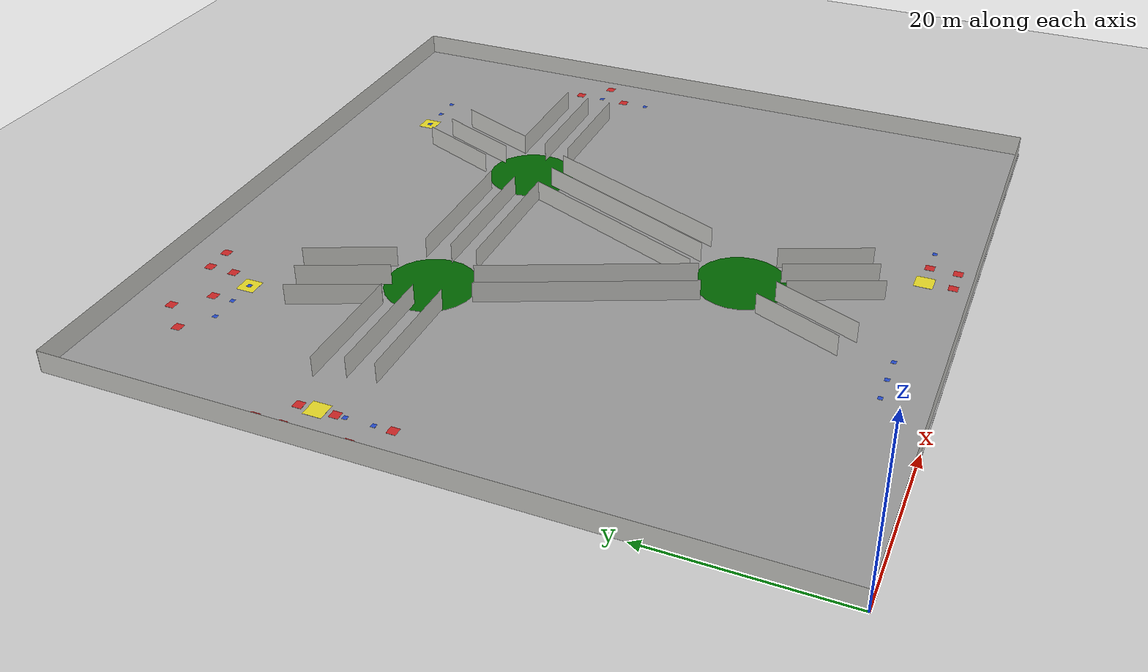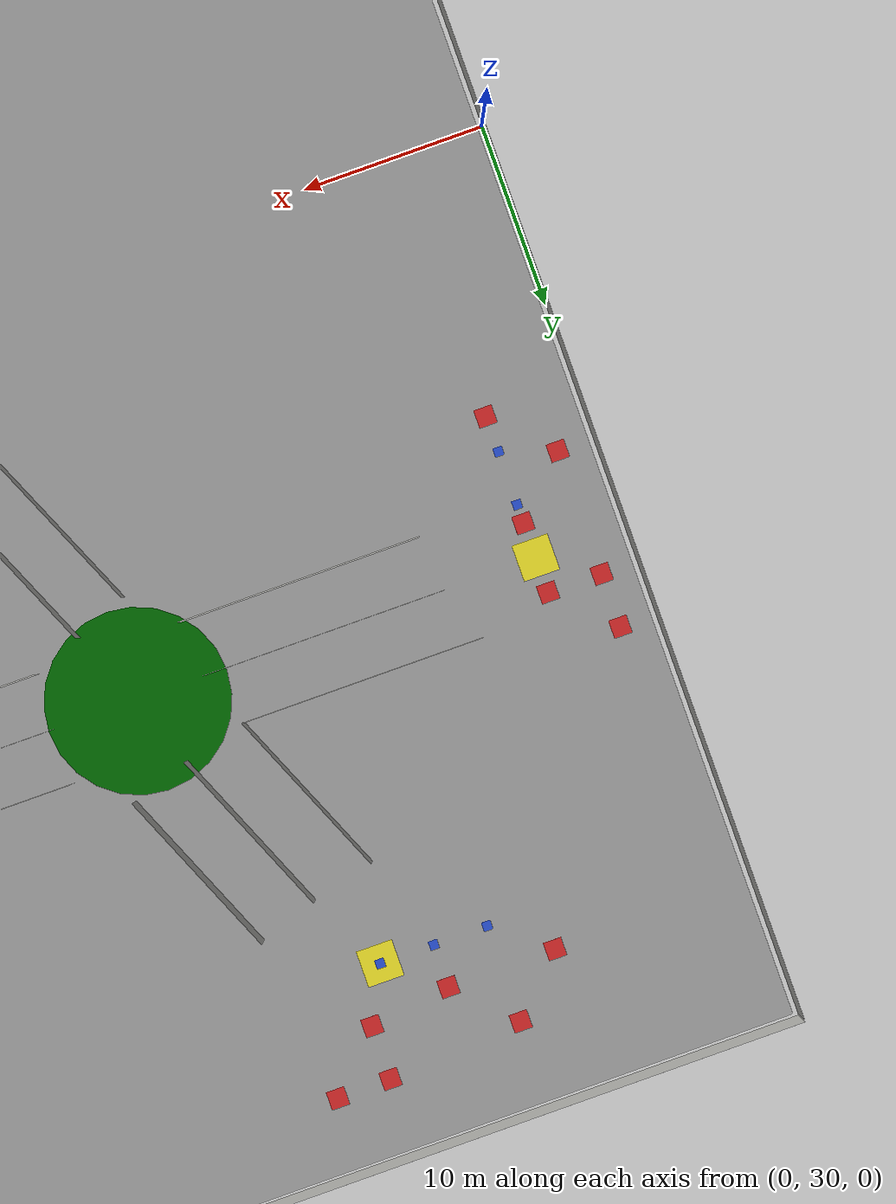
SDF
<sdf version="1.6">
 <world name="default">
  <light name="sun" type="directional">
   <pose>0 0 10 0 -0 0</pose>
   <diffuse>0.8 0.8 0.8 1</diffuse>
   <specular>0.1 0.1 0.1 1</specular>
   <attenuation>
    <range>1000</range>
    <constant>0.9</constant>
    <linear>0.01</linear>
    <quadratic>0.001</quadratic>
   </attenuation>
   <direction>-0.5 0.5 -1</direction>
  </light>
  <model name="ground_plane">
   <static>1</static>
   <link name="link">
    <collision name="collision">
     <geometry><plane><normal>0 0 1</normal><size>100 100</size></plane></geometry>
     <surface><friction><ode><mu>100</mu><mu2>50</mu2></ode></friction></surface>
    </collision>
    <visual name="visual">
     <cast_shadows>0</cast_shadows>
     <geometry><plane><normal>0 0 1</normal><size>100 100</size></plane></geometry>
     <material>
      <script><uri>file://media/materials/scripts/gazebo.material</uri><name>Gazebo/Grey</name></script>
     </material>
    </visual>
   </link>
  </model>
  <gravity>0 0 -9.8</gravity>
  <magnetic_field>6e-06 2.3e-05 -4.2e-05</magnetic_field>
  <atmosphere type="adiabatic"/>
  <physics name="default_physics" default="0" type="ode">
   <max_step_size>0.001</max_step_size>
   <real_time_factor>1</real_time_factor>
   <real_time_update_rate>1000</real_time_update_rate>
  </physics>
  <scene><ambient>0.4 0.4 0.4 1</ambient><background>0.7 0.7 0.7 1</background><shadows>1</shadows></scene>
  <spherical_coordinates>
   <surface_model>EARTH_WGS84</surface_model>
   <latitude_deg>0</latitude_deg>
   <longitude_deg>0</longitude_deg>
   <elevation>0</elevation>
   <heading_deg>0</heading_deg>
  </spherical_coordinates>
  <model name="EMS_WALL">
   <pose>0 40 0 0 -0 0</pose>
   <link name="Wall_28">
    <collision name="Wall_28_Collision">
     <geometry><box><size>80 0.001 2.5</size></box></geometry>
     <pose>0 0 1.25 0 -0 0</pose>
    </collision>
    <visual name="Wall_28_Visual">
     <pose>0 0 1.25 0 -0 0</pose>
     <geometry><box><size>80 0.001 2.5</size></box></geometry>
     <material>
      <script><uri>file://media/materials/scripts/gazebo.material</uri><name>Gazebo/CeilingTiled</name></script>
      <ambient>1 0.764706 0.305882 1</ambient>
     </material>
    </visual>
    <pose>0 2e-06 0 0 -0 1.5708</pose>
   </link>
   <static>1</static>
  </model>
  <model name="EMS_WALL_clone">
   <pose>80 40 0 0 -0 0</pose>
   <link name="Wall_28">
    <collision name="Wall_28_Collision">
     <geometry><box><size>80 0.001 2.5</size></box></geometry>
     <pose>0 0 1.25 0 -0 0</pose>
    </collision>
    <visual name="Wall_28_Visual">
     <pose>0 0 1.25 0 -0 0</pose>
     <geometry><box><size>80 0.001 2.5</size></box></geometry>
     <material>
      <script><uri>file://media/materials/scripts/gazebo.material</uri><name>Gazebo/CeilingTiled</name></script>
      <ambient>1 0.764706 0.305882 1</ambient>
     </material>
    </visual>
    <pose>0 2e-06 0 0 -0 1.5708</pose>
   </link>
   <static>1</static>
  </model>
  <model name="EMS_WALL_clone_clone">
   <pose>40 0 0 0 -0 1.57</pose>
   <link name="Wall_28">
    <collision name="Wall_28_Collision">
     <geometry><box><size>80 0.001 2.5</size></box></geometry>
     <pose>0 0 1.25 0 -0 0</pose>
    </collision>
    <visual name="Wall_28_Visual">
     <pose>0 0 1.25 0 -0 0</pose>
     <geometry><box><size>80 0.001 2.5</size></box></geometry>
     <material>
      <script><uri>file://media/materials/scripts/gazebo.material</uri><name>Gazebo/CeilingTiled</name></script>
      <ambient>1 0.764706 0.305882 1</ambient>
     </material>
    </visual>
    <pose>0 2e-06 0 0 -0 1.5708</pose>
   </link>
   <static>1</static>
  </model>
  <model name="EMS_WALL_clone_clone_clone">
   <pose>40 80 0 0 -0 1.57</pose>
   <link name="Wall_28">
    <collision name="Wall_28_Collision">
     <geometry><box><size>80 0.001 2.5</size></box></geometry>
     <pose>0 0 1.25 0 -0 0</pose>
    </collision>
    <visual name="Wall_28_Visual">
     <pose>0 0 1.25 0 -0 0</pose>
     <geometry><box><size>80 0.001 2.5</size></box></geometry>
     <material>
      <script><uri>file://media/materials/scripts/gazebo.material</uri><name>Gazebo/CeilingTiled</name></script>
      <ambient>1 0.764706 0.305882 1</ambient>
     </material>
    </visual>
    <pose>0 2e-06 0 0 -0 1.5708</pose>
   </link>
   <static>1</static>
  </model>
  <model name="EMS_FLOOR_4">
   <pose>40.2686 39.8608 0 0 -0 0</pose>
   <link name="Wall_32">
    <collision name="Wall_32_Collision">
     <geometry><box><size>80.01 80 0.1</size></box></geometry>
     <pose>0 0 0.05 0 -0 0</pose>
    </collision>
    <visual name="Wall_32_Visual">
     <pose>0 0 0.05 0 -0 0</pose>
     <geometry><box><size>80.01 80 0.1</size></box></geometry>
     <material>
      <script><uri>file://media/materials/scripts/gazebo.material</uri><name>Gazebo/Grey</name></script>
      <ambient>1 1 1 1</ambient>
     </material>
    </visual>
    <pose>0 -1e-06 0 0 -0 1.5708</pose>
   </link>
   <static>1</static>
  </model>
  <model name="35">
   <pose>43.6818 14.1693 0 0 -0 0</pose>
   <link name="Wall_2">
    <collision name="Wall_2_Collision">
     <geometry><box><size>10.2688 0.001 2.5</size></box></geometry>
     <pose>0 0 1.25 0 -0 0</pose>
    </collision>
    <visual name="Wall_2_Visual">
     <pose>0 0 1.25 0 -0 0</pose>
     <geometry><box><size>10.2688 0.001 2.5</size></box></geometry>
     <material>
      <script><uri>file://media/materials/scripts/gazebo.material</uri><name>Gazebo/CeilingTiled</name></script>
      <ambient>0.435294 0.796078 0.67451 1</ambient>
     </material>
    </visual>
    <pose>0 0 0 0 -0 1.9706</pose>
   </link>
   <static>1</static>
  </model>
  <model name="35_clone">
   <pose>40.7717 12.9054 0 0 -0 0</pose>
   <link name="Wall_2">
    <collision name="Wall_2_Collision">
     <geometry><box><size>10.2688 0.001 2.5</size></box></geometry>
     <pose>0 0 1.25 0 -0 0</pose>
    </collision>
    <visual name="Wall_2_Visual">
     <pose>0 0 1.25 0 -0 0</pose>
     <geometry><box><size>10.2688 0.001 2.5</size></box></geometry>
     <material>
      <script><uri>file://media/materials/scripts/gazebo.material</uri><name>Gazebo/CeilingTiled</name></script>
      <ambient>0.435294 0.796078 0.67451 1</ambient>
     </material>
    </visual>
    <pose>0 0 0 0 -0 1.9706</pose>
   </link>
   <static>1</static>
  </model>
  <model name="351_0">
   <pose>33.818 37.6954 0 0 -0 0</pose>
   <link name="Wall_4">
    <collision name="Wall_4_Collision">
     <geometry><box><size>23.3941 0.001 2.5</size></box></geometry>
     <pose>0 0 1.25 0 -0 0</pose>
    </collision>
    <visual name="Wall_4_Visual">
     <pose>0 0 1.25 0 -0 0</pose>
     <geometry><box><size>23.3941 0.001 2.5</size></box></geometry>
     <material>
      <script><uri>file://media/materials/scripts/gazebo.material</uri><name>Gazebo/CeilingTiled</name></script>
      <ambient>0.435294 0.796078 0.67451 1</ambient>
     </material>
    </visual>
    <pose>1e-06 0 0 0 -0 1.9806</pose>
   </link>
   <static>1</static>
  </model>
  <model name="351_0_clone">
   <pose>30.8667 36.459 0 0 -0 0</pose>
   <link name="Wall_4">
    <collision name="Wall_4_Collision">
     <geometry><box><size>23.3941 0.001 2.5</size></box></geometry>
     <pose>0 0 1.25 0 -0 0</pose>
    </collision>
    <visual name="Wall_4_Visual">
     <pose>0 0 1.25 0 -0 0</pose>
     <geometry><box><size>23.3941 0.001 2.5</size></box></geometry>
     <material>
      <script><uri>file://media/materials/scripts/gazebo.material</uri><name>Gazebo/CeilingTiled</name></script>
      <ambient>0.435294 0.796078 0.67451 1</ambient>
     </material>
    </visual>
    <pose>1e-06 0 0 0 -0 1.9806</pose>
   </link>
   <static>1</static>
  </model>
  <model name="352">
   <pose>20.5142 60.1221 0 0 -0 0</pose>
   <link name="Wall_8">
    <collision name="Wall_8_Collision">
     <geometry><box><size>10.0198 0.001 2.5</size></box></geometry>
     <pose>0 0 1.25 0 -0 0</pose>
    </collision>
    <visual name="Wall_8_Visual">
     <pose>0 0 1.25 0 -0 0</pose>
     <geometry><box><size>10.0198 0.001 2.5</size></box></geometry>
     <material>
      <script><uri>file://media/materials/scripts/gazebo.material</uri><name>Gazebo/CeilingTiled</name></script>
      <ambient>0.435294 0.796078 0.67451 1</ambient>
     </material>
    </visual>
    <pose>0 -2e-06 0 0 -0 1.9733</pose>
   </link>
   <static>1</static>
  </model>
  <model name="352_clone">
   <pose>24.0357 61.0304 0 0 -0 0</pose>
   <link name="Wall_8">
    <collision name="Wall_8_Collision">
     <geometry><box><size>10.0198 0.001 2.5</size></box></geometry>
     <pose>0 0 1.25 0 -0 0</pose>
    </collision>
    <visual name="Wall_8_Visual">
     <pose>0 0 1.25 0 -0 0</pose>
     <geometry><box><size>10.0198 0.001 2.5</size></box></geometry>
     <material>
      <script><uri>file://media/materials/scripts/gazebo.material</uri><name>Gazebo/CeilingTiled</name></script>
      <ambient>0.435294 0.796078 0.67451 1</ambient>
     </material>
    </visual>
    <pose>0 -2e-06 0 0 -0 1.9733</pose>
   </link>
   <static>1</static>
  </model>
  <model name="352_clone_clone">
   <pose>27.3125 62.144 0 0 -0 0</pose>
   <link name="Wall_8">
    <collision name="Wall_8_Collision">
     <geometry><box><size>10.0198 0.001 2.5</size></box></geometry>
     <pose>0 0 1.25 0 -0 0</pose>
    </collision>
    <visual name="Wall_8_Visual">
     <pose>0 0 1.25 0 -0 0</pose>
     <geometry><box><size>10.0198 0.001 2.5</size></box></geometry>
     <material>
      <script><uri>file://media/materials/scripts/gazebo.material</uri><name>Gazebo/CeilingTiled</name></script>
      <ambient>0.435294 0.796078 0.67451 1</ambient>
     </material>
    </visual>
    <pose>0 -2e-06 0 0 -0 1.9733</pose>
   </link>
   <static>1</static>
  </model>
  <model name="353">
   <pose>16.9056 52.5 0 0 -0 0</pose>
   <link name="Wall_10">
    <collision name="Wall_10_Collision">
     <geometry><box><size>13.45 0.001 2.5</size></box></geometry>
     <pose>0 0 1.25 0 -0 0</pose>
    </collision>
    <visual name="Wall_10_Visual">
     <pose>0 0 1.25 0 -0 0</pose>
     <geometry><box><size>13.45 0.001 2.5</size></box></geometry>
     <material>
      <script><uri>file://media/materials/scripts/gazebo.material</uri><name>Gazebo/CeilingTiled</name></script>
      <ambient>0.435294 0.796078 0.67451 1</ambient>
     </material>
    </visual>
    <pose>0 0 0 0 -0 3.14159</pose>
   </link>
   <static>1</static>
  </model>
  <model name="353_clone">
   <pose>17.2103 49.4178 0 0 -0 0</pose>
   <link name="Wall_10">
    <collision name="Wall_10_Collision">
     <geometry><box><size>13.45 0.001 2.5</size></box></geometry>
     <pose>0 0 1.25 0 -0 0</pose>
    </collision>
    <visual name="Wall_10_Visual">
     <pose>0 0 1.25 0 -0 0</pose>
     <geometry><box><size>13.45 0.001 2.5</size></box></geometry>
     <material>
      <script><uri>file://media/materials/scripts/gazebo.material</uri><name>Gazebo/CeilingTiled</name></script>
      <ambient>0.435294 0.796078 0.67451 1</ambient>
     </material>
    </visual>
    <pose>0 0 0 0 -0 3.14159</pose>
   </link>
   <static>1</static>
  </model>
  <model name="355">
   <pose>33.4162 15.1125 0 0 -0 0</pose>
   <link name="Wall_12">
    <collision name="Wall_12_Collision">
     <geometry><box><size>10.2688 0.001 2.5</size></box></geometry>
     <pose>0 0 1.25 0 -0 0</pose>
    </collision>
    <visual name="Wall_12_Visual">
     <pose>0 0 1.25 0 -0 0</pose>
     <geometry><box><size>10.2688 0.001 2.5</size></box></geometry>
     <material>
      <script><uri>file://media/materials/scripts/gazebo.material</uri><name>Gazebo/CeilingTiled</name></script>
      <ambient>0.435294 0.796078 0.67451 1</ambient>
     </material>
    </visual>
    <pose>0 0 0 0 -0 1.17099</pose>
   </link>
   <static>1</static>
  </model>
  <model name="355_clone">
   <pose>36.2739 13.8279 0 0 -0 0</pose>
   <link name="Wall_12">
    <collision name="Wall_12_Collision">
     <geometry><box><size>10.2688 0.001 2.5</size></box></geometry>
     <pose>0 0 1.25 0 -0 0</pose>
    </collision>
    <visual name="Wall_12_Visual">
     <pose>0 0 1.25 0 -0 0</pose>
     <geometry><box><size>10.2688 0.001 2.5</size></box></geometry>
     <material>
      <script><uri>file://media/materials/scripts/gazebo.material</uri><name>Gazebo/CeilingTiled</name></script>
      <ambient>0.435294 0.796078 0.67451 1</ambient>
     </material>
    </visual>
    <pose>0 0 0 0 -0 1.17099</pose>
   </link>
   <static>1</static>
  </model>
  <model name="356">
   <pose>43.4074 38.791 0 0 -0 0</pose>
   <link name="Wall_14">
    <collision name="Wall_14_Collision">
     <geometry><box><size>23.2878 0.001 2.5</size></box></geometry>
     <pose>0 0 1.25 0 -0 0</pose>
    </collision>
    <visual name="Wall_14_Visual">
     <pose>0 0 1.25 0 -0 0</pose>
     <geometry><box><size>23.2878 0.001 2.5</size></box></geometry>
     <material>
      <script><uri>file://media/materials/scripts/gazebo.material</uri><name>Gazebo/CeilingTiled</name></script>
      <ambient>0.435294 0.796078 0.67451 1</ambient>
     </material>
    </visual>
    <pose>0 0 0 0 -0 1.17162</pose>
   </link>
   <static>1</static>
  </model>
  <model name="356_clone">
   <pose>46.9426 38.7153 0 0 -0 0</pose>
   <link name="Wall_14">
    <collision name="Wall_14_Collision">
     <geometry><box><size>23.2878 0.001 2.5</size></box></geometry>
     <pose>0 0 1.25 0 -0 0</pose>
    </collision>
    <visual name="Wall_14_Visual">
     <pose>0 0 1.25 0 -0 0</pose>
     <geometry><box><size>23.2878 0.001 2.5</size></box></geometry>
     <material>
      <script><uri>file://media/materials/scripts/gazebo.material</uri><name>Gazebo/CeilingTiled</name></script>
      <ambient>0.435294 0.796078 0.67451 1</ambient>
     </material>
    </visual>
    <pose>0 0 0 0 -0 1.17162</pose>
   </link>
   <static>1</static>
  </model>
  <model name="357">
   <pose>53.4358 62.579 0 0 -0 0</pose>
   <link name="Wall_16">
    <collision name="Wall_16_Collision">
     <geometry><box><size>10.0198 0.001 2.5</size></box></geometry>
     <pose>0 0 1.25 0 -0 0</pose>
    </collision>
    <visual name="Wall_16_Visual">
     <pose>0 0 1.25 0 -0 0</pose>
     <geometry><box><size>10.0198 0.001 2.5</size></box></geometry>
     <material>
      <script><uri>file://media/materials/scripts/gazebo.material</uri><name>Gazebo/CeilingTiled</name></script>
      <ambient>0.435294 0.796078 0.67451 1</ambient>
     </material>
    </visual>
    <pose>0 -2e-06 0 0 -0 1.16829</pose>
   </link>
   <static>1</static>
  </model>
  <model name="357_clone">
   <pose>56.275 61.25 0 0 -0 0</pose>
   <link name="Wall_16">
    <collision name="Wall_16_Collision">
     <geometry><box><size>10.0198 0.001 2.5</size></box></geometry>
     <pose>0 0 1.25 0 -0 0</pose>
    </collision>
    <visual name="Wall_16_Visual">
     <pose>0 0 1.25 0 -0 0</pose>
     <geometry><box><size>10.0198 0.001 2.5</size></box></geometry>
     <material>
      <script><uri>file://media/materials/scripts/gazebo.material</uri><name>Gazebo/CeilingTiled</name></script>
      <ambient>0.435294 0.796078 0.67451 1</ambient>
     </material>
    </visual>
    <pose>0 -2e-06 0 0 -0 1.16829</pose>
   </link>
   <static>1</static>
  </model>
  <model name="357_clone_0">
   <pose>59.4264 60.1671 0 0 -0 0</pose>
   <link name="Wall_16">
    <collision name="Wall_16_Collision">
     <geometry><box><size>10.0198 0.001 2.5</size></box></geometry>
     <pose>0 0 1.25 0 -0 0</pose>
    </collision>
    <visual name="Wall_16_Visual">
     <pose>0 0 1.25 0 -0 0</pose>
     <geometry><box><size>10.0198 0.001 2.5</size></box></geometry>
     <material>
      <script><uri>file://media/materials/scripts/gazebo.material</uri><name>Gazebo/CeilingTiled</name></script>
      <ambient>0.435294 0.796078 0.67451 1</ambient>
     </material>
    </visual>
    <pose>0 -2e-06 0 0 -0 1.16829</pose>
   </link>
   <static>1</static>
  </model>
  <model name="358">
   <pose>63.3255 52.5112 0 0 -0 0</pose>
   <link name="Wall_18">
    <collision name="Wall_18_Collision">
     <geometry><box><size>13.45 0.001 2.5</size></box></geometry>
     <pose>0 0 1.25 0 -0 0</pose>
    </collision>
    <visual name="Wall_18_Visual">
     <pose>0 0 1.25 0 -0 0</pose>
     <geometry><box><size>13.45 0.001 2.5</size></box></geometry>
     <material>
      <script><uri>file://media/materials/scripts/gazebo.material</uri><name>Gazebo/CeilingTiled</name></script>
      <ambient>0.435294 0.796078 0.67451 1</ambient>
     </material>
    </visual>
   </link>
   <static>1</static>
  </model>
  <model name="358_clone">
   <pose>64.0856 55.5387 0 0 -0 0</pose>
   <link name="Wall_18">
    <collision name="Wall_18_Collision">
     <geometry><box><size>13.45 0.001 2.5</size></box></geometry>
     <pose>0 0 1.25 0 -0 0</pose>
    </collision>
    <visual name="Wall_18_Visual">
     <pose>0 0 1.25 0 -0 0</pose>
     <geometry><box><size>13.45 0.001 2.5</size></box></geometry>
     <material>
      <script><uri>file://media/materials/scripts/gazebo.material</uri><name>Gazebo/CeilingTiled</name></script>
      <ambient>0.435294 0.796078 0.67451 1</ambient>
     </material>
    </visual>
   </link>
   <static>1</static>
  </model>
  <model name="359">
   <pose>40 52.5 0 0 -0 0</pose>
   <link name="Wall_20">
    <collision name="Wall_20_Collision">
     <geometry><box><size>16.1 0.001 2.5</size></box></geometry>
     <pose>0 0 1.25 0 -0 0</pose>
    </collision>
    <visual name="Wall_20_Visual">
     <pose>0 0 1.25 0 -0 0</pose>
     <geometry><box><size>16.1 0.001 2.5</size></box></geometry>
     <material>
      <script><uri>file://media/materials/scripts/gazebo.material</uri><name>Gazebo/CeilingTiled</name></script>
      <ambient>0.435294 0.796078 0.67451 1</ambient>
     </material>
    </visual>
   </link>
   <static>1</static>
  </model>
  <model name="359_clone">
   <pose>39.988 55.5411 0 0 -0 0</pose>
   <link name="Wall_20">
    <collision name="Wall_20_Collision">
     <geometry><box><size>16.1 0.001 2.5</size></box></geometry>
     <pose>0 0 1.25 0 -0 0</pose>
    </collision>
    <visual name="Wall_20_Visual">
     <pose>0 0 1.25 0 -0 0</pose>
     <geometry><box><size>16.1 0.001 2.5</size></box></geometry>
     <material>
      <script><uri>file://media/materials/scripts/gazebo.material</uri><name>Gazebo/CeilingTiled</name></script>
      <ambient>0.435294 0.796078 0.67451 1</ambient>
     </material>
    </visual>
   </link>
   <static>1</static>
  </model>
  <model name="356_clone_clone">
   <pose>50.1871 38.5958 0 0 -0 0</pose>
   <link name="Wall_14">
    <collision name="Wall_14_Collision">
     <geometry><box><size>23.2878 0.001 2.5</size></box></geometry>
     <pose>0 0 1.25 0 -0 0</pose>
    </collision>
    <visual name="Wall_14_Visual">
     <pose>0 0 1.25 0 -0 0</pose>
     <geometry><box><size>23.2878 0.001 2.5</size></box></geometry>
     <material>
      <script><uri>file://media/materials/scripts/gazebo.material</uri><name>Gazebo/CeilingTiled</name></script>
      <ambient>0.435294 0.796078 0.67451 1</ambient>
     </material>
    </visual>
    <pose>0 0 0 0 -0 1.17162</pose>
   </link>
   <static>1</static>
  </model>
  <model name="35_clone_0">
   <pose>46.4308 15.422 0 0 -0 0</pose>
   <link name="Wall_2">
    <collision name="Wall_2_Collision">
     <geometry><box><size>10.2688 0.001 2.5</size></box></geometry>
     <pose>0 0 1.25 0 -0 0</pose>
    </collision>
    <visual name="Wall_2_Visual">
     <pose>0 0 1.25 0 -0 0</pose>
     <geometry><box><size>10.2688 0.001 2.5</size></box></geometry>
     <material>
      <script><uri>file://media/materials/scripts/gazebo.material</uri><name>Gazebo/CeilingTiled</name></script>
      <ambient>0.435294 0.796078 0.67451 1</ambient>
     </material>
    </visual>
    <pose>0 0 0 0 -0 1.9706</pose>
   </link>
   <static>1</static>
  </model>
  <model name="353_clone_clone">
   <pose>15.7845 55.5321 0 0 -0 0</pose>
   <link name="Wall_10">
    <collision name="Wall_10_Collision">
     <geometry><box><size>13.45 0.001 2.5</size></box></geometry>
     <pose>0 0 1.25 0 -0 0</pose>
    </collision>
    <visual name="Wall_10_Visual">
     <pose>0 0 1.25 0 -0 0</pose>
     <geometry><box><size>13.45 0.001 2.5</size></box></geometry>
     <material>
      <script><uri>file://media/materials/scripts/gazebo.material</uri><name>Gazebo/CeilingTiled</name></script>
      <ambient>0.435294 0.796078 0.67451 1</ambient>
     </material>
    </visual>
    <pose>0 0 0 0 -0 3.14159</pose>
   </link>
   <static>1</static>
  </model>
  <model name="358_clone_clone">
   <pose>63.1809 49.5 0 0 -0 0</pose>
   <link name="Wall_18">
    <collision name="Wall_18_Collision">
     <geometry><box><size>13.45 0.001 2.5</size></box></geometry>
     <pose>0 0 1.25 0 -0 0</pose>
    </collision>
    <visual name="Wall_18_Visual">
     <pose>0 0 1.25 0 -0 0</pose>
     <geometry><box><size>13.45 0.001 2.5</size></box></geometry>
     <material>
      <script><uri>file://media/materials/scripts/gazebo.material</uri><name>Gazebo/CeilingTiled</name></script>
      <ambient>0.435294 0.796078 0.67451 1</ambient>
     </material>
    </visual>
   </link>
   <static>1</static>
  </model>
  <model name="359_clone_0">
   <pose>39.879 49.4738 0 0 -0 0</pose>
   <link name="Wall_20">
    <collision name="Wall_20_Collision">
     <geometry><box><size>16.1 0.001 2.5</size></box></geometry>
     <pose>0 0 1.25 0 -0 0</pose>
    </collision>
    <visual name="Wall_20_Visual">
     <pose>0 0 1.25 0 -0 0</pose>
     <geometry><box><size>16.1 0.001 2.5</size></box></geometry>
     <material>
      <script><uri>file://media/materials/scripts/gazebo.material</uri><name>Gazebo/CeilingTiled</name></script>
      <ambient>0.435294 0.796078 0.67451 1</ambient>
     </material>
    </visual>
   </link>
   <static>1</static>
  </model>
  <model name="my_objectT1">
   <link name="my_box">
    <inertial>
     <mass>1</mass>
     <inertia><ixx>1</ixx><ixy>0</ixy><ixz>0</ixz><iyy>100</iyy><iyz>0</iyz><izz>1</izz></inertia>
    </inertial>
    <collision name="my_box_collision"><geometry><box><size>2 2 0.01</size></box></geometry></collision>
    <visual name="my_box_visual">
     <geometry><box><size>2 2 0.01</size></box></geometry>
     <material>
      <script><name>Gazebo/Yellow</name><uri>file://media/materials/scripts/gazebo.material</uri></script>
     </material>
    </visual>
   </link>
   <pose>19.9955 70.0064 0.104891 0 0 -0.000628</pose>
  </model>
  <model name="my_objectT2">
   <link name="my_box">
    <inertial>
     <mass>1</mass>
     <inertia><ixx>1</ixx><ixy>0</ixy><ixz>0</ixz><iyy>100</iyy><iyz>0</iyz><izz>1</izz></inertia>
    </inertial>
    <collision name="my_box_collision"><geometry><box><size>2 2 0.01</size></box></geometry></collision>
    <visual name="my_box_visual">
     <geometry><box><size>2 2 0.01</size></box></geometry>
     <material>
      <script><name>Gazebo/Yellow</name><uri>file://media/materials/scripts/gazebo.material</uri></script>
     </material>
    </visual>
   </link>
   <pose>59.9935 70.0123 0.105 0 -0 0.000893</pose>
  </model>
  <model name="my_objectT3">
   <link name="my_box">
    <inertial>
     <mass>1</mass>
     <inertia><ixx>1</ixx><ixy>0</ixy><ixz>0</ixz><iyy>100</iyy><iyz>0</iyz><izz>1</izz></inertia>
    </inertial>
    <collision name="my_box_collision"><geometry><box><size>2 2 0.01</size></box></geometry></collision>
    <visual name="my_box_visual">
     <geometry><box><size>2 2 0.01</size></box></geometry>
     <material>
      <script><name>Gazebo/Yellow</name><uri>file://media/materials/scripts/gazebo.material</uri></script>
     </material>
    </visual>
   </link>
   <pose>4.99891 52.4962 0.115013 4.9e-05 6e-06 -0.0001</pose>
  </model>
  <model name="my_objectT4">
   <link name="my_box">
    <inertial>
     <mass>1</mass>
     <inertia><ixx>1</ixx><ixy>0</ixy><ixz>0</ixz><iyy>100</iyy><iyz>0</iyz><izz>1</izz></inertia>
    </inertial>
    <collision name="my_box_collision"><geometry><box><size>2 2 0.01</size></box></geometry></collision>
    <visual name="my_box_visual">
     <geometry><box><size>2 2 0.01</size></box></geometry>
     <material>
      <script><name>Gazebo/Yellow</name><uri>file://media/materials/scripts/gazebo.material</uri></script>
     </material>
    </visual>
   </link>
   <pose>47.4956 5.0042 0.115012 -7.7e-05 7e-06 0.000445</pose>
  </model>
  <model name="my_objecteg1w1">
   <link name="my_box">
    <inertial>
     <mass>1</mass>
     <inertia><ixx>1</ixx><ixy>0</ixy><ixz>0</ixz><iyy>100</iyy><iyz>0</iyz><izz>1</izz></inertia>
    </inertial>
    <collision name="my_box_collision"><geometry><box><size>1 1 0.01</size></box></geometry></collision>
    <visual name="my_box_visual">
     <geometry><box><size>1 1 0.01</size></box></geometry>
     <material>
      <script><name>Gazebo/Red</name><uri>file://media/materials/scripts/gazebo.material</uri></script>
     </material>
    </visual>
   </link>
   <pose>2 47.55 0.104995 0 -0 0</pose>
  </model>
  <model name="my_objecteg1w2">
   <link name="my_box">
    <inertial>
     <mass>1</mass>
     <inertia><ixx>1</ixx><ixy>0</ixy><ixz>0</ixz><iyy>100</iyy><iyz>0</iyz><izz>1</izz></inertia>
    </inertial>
    <collision name="my_box_collision"><geometry><box><size>1 1 0.01</size></box></geometry></collision>
    <visual name="my_box_visual">
     <geometry><box><size>1 1 0.01</size></box></geometry>
     <material>
      <script><name>Gazebo/Red</name><uri>file://media/materials/scripts/gazebo.material</uri></script>
     </material>
    </visual>
   </link>
   <pose>5 44.55 0.104995 0 -0 0</pose>
  </model>
  <model name="my_objecteg1w3">
   <link name="my_box">
    <inertial>
     <mass>1</mass>
     <inertia><ixx>1</ixx><ixy>0</ixy><ixz>0</ixz><iyy>100</iyy><iyz>0</iyz><izz>1</izz></inertia>
    </inertial>
    <collision name="my_box_collision"><geometry><box><size>1 1 0.01</size></box></geometry></collision>
    <visual name="my_box_visual">
     <geometry><box><size>1 1 0.01</size></box></geometry>
     <material>
      <script><name>Gazebo/Red</name><uri>file://media/materials/scripts/gazebo.material</uri></script>
     </material>
    </visual>
   </link>
   <pose>5 50.55 0.104995 0 -0 0.001074</pose>
  </model>
  <model name="my_objecteg2w1">
   <link name="my_box">
    <inertial>
     <mass>1</mass>
     <inertia><ixx>1</ixx><ixy>0</ixy><ixz>0</ixz><iyy>100</iyy><iyz>0</iyz><izz>1</izz></inertia>
    </inertial>
    <collision name="my_box_collision"><geometry><box><size>1 1 0.01</size></box></geometry></collision>
    <visual name="my_box_visual">
     <geometry><box><size>1 1 0.01</size></box></geometry>
     <material>
      <script><name>Gazebo/Red</name><uri>file://media/materials/scripts/gazebo.material</uri></script>
     </material>
    </visual>
   </link>
   <pose>74.9957 49.5049 0.114812 -2.5e-05 7e-06 0.000694</pose>
  </model>
  <model name="my_objecteg2w2">
   <link name="my_box">
    <inertial>
     <mass>1</mass>
     <inertia><ixx>1</ixx><ixy>0</ixy><ixz>0</ixz><iyy>100</iyy><iyz>0</iyz><izz>1</izz></inertia>
    </inertial>
    <collision name="my_box_collision"><geometry><box><size>1 1 0.01</size></box></geometry></collision>
    <visual name="my_box_visual">
     <geometry><box><size>1 1 0.01</size></box></geometry>
     <material>
      <script><name>Gazebo/Red</name><uri>file://media/materials/scripts/gazebo.material</uri></script>
     </material>
    </visual>
   </link>
   <pose>75 55.5 0.104999 0 -0 0</pose>
  </model>
  <model name="my_objecteg2w3">
   <link name="my_box">
    <inertial>
     <mass>1</mass>
     <inertia><ixx>1</ixx><ixy>0</ixy><ixz>0</ixz><iyy>100</iyy><iyz>0</iyz><izz>1</izz></inertia>
    </inertial>
    <collision name="my_box_collision"><geometry><box><size>1 1 0.01</size></box></geometry></collision>
    <visual name="my_box_visual">
     <geometry><box><size>1 1 0.01</size></box></geometry>
     <material>
      <script><name>Gazebo/Red</name><uri>file://media/materials/scripts/gazebo.material</uri></script>
     </material>
    </visual>
   </link>
   <pose>78 52.5 0.104999 0 -0 4e-06</pose>
  </model>
  <model name="my_objecteg3w1">
   <link name="my_box">
    <inertial>
     <mass>1</mass>
     <inertia><ixx>1</ixx><ixy>0</ixy><ixz>0</ixz><iyy>100</iyy><iyz>0</iyz><izz>1</izz></inertia>
    </inertial>
    <collision name="my_box_collision"><geometry><box><size>1 1 0.01</size></box></geometry></collision>
    <visual name="my_box_visual">
     <geometry><box><size>1 1 0.01</size></box></geometry>
     <material>
      <script><name>Gazebo/Red</name><uri>file://media/materials/scripts/gazebo.material</uri></script>
     </material>
    </visual>
   </link>
   <pose>50.4813 2.00479 0.104995 0 -0 0</pose>
  </model>
  <model name="my_objecteg3w2">
   <link name="my_box">
    <inertial>
     <mass>1</mass>
     <inertia><ixx>1</ixx><ixy>0</ixy><ixz>0</ixz><iyy>100</iyy><iyz>0</iyz><izz>1</izz></inertia>
    </inertial>
    <collision name="my_box_collision"><geometry><box><size>1 1 0.01</size></box></geometry></collision>
    <visual name="my_box_visual">
     <geometry><box><size>1 1 0.01</size></box></geometry>
     <material>
      <script><name>Gazebo/Red</name><uri>file://media/materials/scripts/gazebo.material</uri></script>
     </material>
    </visual>
   </link>
   <pose>50.4978 4.99945 0.114973 1e-06 8e-06 0.000167</pose>
  </model>
  <model name="my_objecteg3w3">
   <link name="my_box">
    <inertial>
     <mass>1</mass>
     <inertia><ixx>1</ixx><ixy>0</ixy><ixz>0</ixz><iyy>100</iyy><iyz>0</iyz><izz>1</izz></inertia>
    </inertial>
    <collision name="my_box_collision"><geometry><box><size>1 1 0.01</size></box></geometry></collision>
    <visual name="my_box_visual">
     <geometry><box><size>1 1 0.01</size></box></geometry>
     <material>
      <script><name>Gazebo/Red</name><uri>file://media/materials/scripts/gazebo.material</uri></script>
     </material>
    </visual>
   </link>
   <pose>47.5 2 0.104995 0 -0 0</pose>
  </model>
  <model name="my_objecteg4w1">
   <link name="my_box">
    <inertial>
     <mass>1</mass>
     <inertia><ixx>1</ixx><ixy>0</ixy><ixz>0</ixz><iyy>100</iyy><iyz>0</iyz><izz>1</izz></inertia>
    </inertial>
    <collision name="my_box_collision"><geometry><box><size>1 1 0.01</size></box></geometry></collision>
    <visual name="my_box_visual">
     <geometry><box><size>1 1 0.01</size></box></geometry>
     <material>
      <script><name>Gazebo/Red</name><uri>file://media/materials/scripts/gazebo.material</uri></script>
     </material>
    </visual>
   </link>
   <pose>2 57.45 0.104995 0 -0 0</pose>
  </model>
  <model name="my_objecteg4w2">
   <link name="my_box">
    <inertial>
     <mass>1</mass>
     <inertia><ixx>1</ixx><ixy>0</ixy><ixz>0</ixz><iyy>100</iyy><iyz>0</iyz><izz>1</izz></inertia>
    </inertial>
    <collision name="my_box_collision"><geometry><box><size>1 1 0.01</size></box></geometry></collision>
    <visual name="my_box_visual">
     <geometry><box><size>1 1 0.01</size></box></geometry>
     <material>
      <script><name>Gazebo/Red</name><uri>file://media/materials/scripts/gazebo.material</uri></script>
     </material>
    </visual>
   </link>
   <pose>5 54.45 0.104995 0 -0 0</pose>
  </model>
  <model name="my_objecteg5w1">
   <link name="my_box">
    <inertial>
     <mass>1</mass>
     <inertia><ixx>1</ixx><ixy>0</ixy><ixz>0</ixz><iyy>100</iyy><iyz>0</iyz><izz>1</izz></inertia>
    </inertial>
    <collision name="my_box_collision"><geometry><box><size>1 1 0.01</size></box></geometry></collision>
    <visual name="my_box_visual">
     <geometry><box><size>1 1 0.01</size></box></geometry>
     <material>
      <script><name>Gazebo/Red</name><uri>file://media/materials/scripts/gazebo.material</uri></script>
     </material>
    </visual>
   </link>
   <pose>11 72.4 0.104995 0 -0 0</pose>
  </model>
  <model name="my_objecteg5w2">
   <link name="my_box">
    <inertial>
     <mass>1</mass>
     <inertia><ixx>1</ixx><ixy>0</ixy><ixz>0</ixz><iyy>100</iyy><iyz>0</iyz><izz>1</izz></inertia>
    </inertial>
    <collision name="my_box_collision"><geometry><box><size>1 1 0.01</size></box></geometry></collision>
    <visual name="my_box_visual">
     <geometry><box><size>1 1 0.01</size></box></geometry>
     <material>
      <script><name>Gazebo/Red</name><uri>file://media/materials/scripts/gazebo.material</uri></script>
     </material>
    </visual>
   </link>
   <pose>14 75.4 0.104995 0 -0 0</pose>
  </model>
  <model name="my_objecteg5w3">
   <link name="my_box">
    <inertial>
     <mass>1</mass>
     <inertia><ixx>1</ixx><ixy>0</ixy><ixz>0</ixz><iyy>100</iyy><iyz>0</iyz><izz>1</izz></inertia>
    </inertial>
    <collision name="my_box_collision"><geometry><box><size>1 1 0.01</size></box></geometry></collision>
    <visual name="my_box_visual">
     <geometry><box><size>1 1 0.01</size></box></geometry>
     <material>
      <script><name>Gazebo/Red</name><uri>file://media/materials/scripts/gazebo.material</uri></script>
     </material>
    </visual>
   </link>
   <pose>17 72.4 0.104995 0 -0 0</pose>
  </model>
  <model name="my_objecteg6w1">
   <link name="my_box">
    <inertial>
     <mass>1</mass>
     <inertia><ixx>1</ixx><ixy>0</ixy><ixz>0</ixz><iyy>100</iyy><iyz>0</iyz><izz>1</izz></inertia>
    </inertial>
    <collision name="my_box_collision"><geometry><box><size>1 1 0.01</size></box></geometry></collision>
    <visual name="my_box_visual">
     <geometry><box><size>1 1 0.01</size></box></geometry>
     <material>
      <script><name>Gazebo/Red</name><uri>file://media/materials/scripts/gazebo.material</uri></script>
     </material>
    </visual>
   </link>
   <pose>21.5 73 0.104995 0 -0 0</pose>
  </model>
  <model name="my_objecteg6w2">
   <link name="my_box">
    <inertial>
     <mass>1</mass>
     <inertia><ixx>1</ixx><ixy>0</ixy><ixz>0</ixz><iyy>100</iyy><iyz>0</iyz><izz>1</izz></inertia>
    </inertial>
    <collision name="my_box_collision"><geometry><box><size>1 1 0.01</size></box></geometry></collision>
    <visual name="my_box_visual">
     <geometry><box><size>1 1 0.01</size></box></geometry>
     <material>
      <script><name>Gazebo/Red</name><uri>file://media/materials/scripts/gazebo.material</uri></script>
     </material>
    </visual>
   </link>
   <pose>24.5 76 0.104995 0 -0 0</pose>
  </model>
  <model name="my_objecteg6w3">
   <link name="my_box">
    <inertial>
     <mass>1</mass>
     <inertia><ixx>1</ixx><ixy>0</ixy><ixz>0</ixz><iyy>100</iyy><iyz>0</iyz><izz>1</izz></inertia>
    </inertial>
    <collision name="my_box_collision"><geometry><box><size>1 1 0.01</size></box></geometry></collision>
    <visual name="my_box_visual">
     <geometry><box><size>1 1 0.01</size></box></geometry>
     <material>
      <script><name>Gazebo/Red</name><uri>file://media/materials/scripts/gazebo.material</uri></script>
     </material>
    </visual>
   </link>
   <pose>21.5312 75.9663 0.104995 0 -0 0</pose>
  </model>
  <model name="my_objectg1w1">
   <link name="my_box">
    <inertial>
     <mass>1</mass>
     <inertia><ixx>1</ixx><ixy>0</ixy><ixz>0</ixz><iyy>100</iyy><iyz>0</iyz><izz>1</izz></inertia>
    </inertial>
    <collision name="my_box_collision"><geometry><box><size>0.5 0.5 0.01</size></box></geometry></collision>
    <visual name="my_box_visual">
     <geometry><box><size>0.5 0.5 0.01</size></box></geometry>
     <material>
      <script><name>Gazebo/Blue</name><uri>file://media/materials/scripts/gazebo.material</uri></script>
     </material>
    </visual>
   </link>
   <pose>47.4938 5.01009 0.105002 0 6e-06 0.000888</pose>
  </model>
  <model name="my_objectg1w2">
   <link name="my_box">
    <inertial>
     <mass>1</mass>
     <inertia><ixx>1</ixx><ixy>0</ixy><ixz>0</ixz><iyy>100</iyy><iyz>0</iyz><izz>1</izz></inertia>
    </inertial>
    <collision name="my_box_collision"><geometry><box><size>0.5 0.5 0.01</size></box></geometry></collision>
    <visual name="my_box_visual">
     <geometry><box><size>0.5 0.5 0.01</size></box></geometry>
     <material>
      <script><name>Gazebo/Blue</name><uri>file://media/materials/scripts/gazebo.material</uri></script>
     </material>
    </visual>
   </link>
   <pose>50.4927 5.0116 0.104992 0 7e-06 0.000934</pose>
  </model>
  <model name="my_objectg1w3">
   <link name="my_box">
    <inertial>
     <mass>1</mass>
     <inertia><ixx>1</ixx><ixy>0</ixy><ixz>0</ixz><iyy>100</iyy><iyz>0</iyz><izz>1</izz></inertia>
    </inertial>
    <collision name="my_box_collision"><geometry><box><size>0.5 0.5 0.01</size></box></geometry></collision>
    <visual name="my_box_visual">
     <geometry><box><size>0.5 0.5 0.01</size></box></geometry>
     <material>
      <script><name>Gazebo/Blue</name><uri>file://media/materials/scripts/gazebo.material</uri></script>
     </material>
    </visual>
   </link>
   <pose>53.4788 5.03376 0.104999 0 0 -0.000797</pose>
  </model>
  <model name="my_objectg2w1">
   <link name="my_box">
    <inertial>
     <mass>1</mass>
     <inertia><ixx>1</ixx><ixy>0</ixy><ixz>0</ixz><iyy>100</iyy><iyz>0</iyz><izz>1</izz></inertia>
    </inertial>
    <collision name="my_box_collision"><geometry><box><size>0.5 0.5 0.01</size></box></geometry></collision>
    <visual name="my_box_visual">
     <geometry><box><size>0.5 0.5 0.01</size></box></geometry>
     <material>
      <script><name>Gazebo/Blue</name><uri>file://media/materials/scripts/gazebo.material</uri></script>
     </material>
    </visual>
   </link>
   <pose>32.4802 5.03515 0.104991 -1e-06 -0 -0.001695</pose>
  </model>
  <model name="my_objectg2w2">
   <link name="my_box">
    <inertial>
     <mass>1</mass>
     <inertia><ixx>1</ixx><ixy>0</ixy><ixz>0</ixz><iyy>100</iyy><iyz>0</iyz><izz>1</izz></inertia>
    </inertial>
    <collision name="my_box_collision"><geometry><box><size>0.5 0.5 0.01</size></box></geometry></collision>
    <visual name="my_box_visual">
     <geometry><box><size>0.5 0.5 0.01</size></box></geometry>
     <material>
      <script><name>Gazebo/Blue</name><uri>file://media/materials/scripts/gazebo.material</uri></script>
     </material>
    </visual>
   </link>
   <pose>29.4788 5.033 0.104991 0 0 -0.001204</pose>
  </model>
  <model name="my_objectg2w3">
   <link name="my_box">
    <inertial>
     <mass>1</mass>
     <inertia><ixx>1</ixx><ixy>0</ixy><ixz>0</ixz><iyy>100</iyy><iyz>0</iyz><izz>1</izz></inertia>
    </inertial>
    <collision name="my_box_collision"><geometry><box><size>0.5 0.5 0.01</size></box></geometry></collision>
    <visual name="my_box_visual">
     <geometry><box><size>0.5 0.5 0.01</size></box></geometry>
     <material>
      <script><name>Gazebo/Blue</name><uri>file://media/materials/scripts/gazebo.material</uri></script>
     </material>
    </visual>
   </link>
   <pose>26.4784 5.0333 0.105 2e-06 -0 -0.002148</pose>
  </model>
  <model name="my_objectg3w1">
   <link name="my_box">
    <inertial>
     <mass>1</mass>
     <inertia><ixx>1</ixx><ixy>0</ixy><ixz>0</ixz><iyy>100</iyy><iyz>0</iyz><izz>1</izz></inertia>
    </inertial>
    <collision name="my_box_collision"><geometry><box><size>0.5 0.5 0.01</size></box></geometry></collision>
    <visual name="my_box_visual">
     <geometry><box><size>0.5 0.5 0.01</size></box></geometry>
     <material>
      <script><name>Gazebo/Blue</name><uri>file://media/materials/scripts/gazebo.material</uri></script>
     </material>
    </visual>
   </link>
   <pose>19.99 70.0154 0.114864 0 1e-06 -0.000646</pose>
  </model>
  <model name="my_objectg3w2">
   <link name="my_box">
    <inertial>
     <mass>1</mass>
     <inertia><ixx>1</ixx><ixy>0</ixy><ixz>0</ixz><iyy>100</iyy><iyz>0</iyz><izz>1</izz></inertia>
    </inertial>
    <collision name="my_box_collision"><geometry><box><size>0.5 0.5 0.01</size></box></geometry></collision>
    <visual name="my_box_visual">
     <geometry><box><size>0.5 0.5 0.01</size></box></geometry>
     <material>
      <script><name>Gazebo/Blue</name><uri>file://media/materials/scripts/gazebo.material</uri></script>
     </material>
    </visual>
   </link>
   <pose>16.9788 70.0353 0.104991 -1e-06 -0 -0.002076</pose>
  </model>
  <model name="my_objectg3w3">
   <link name="my_box">
    <inertial>
     <mass>1</mass>
     <inertia><ixx>1</ixx><ixy>0</ixy><ixz>0</ixz><iyy>100</iyy><iyz>0</iyz><izz>1</izz></inertia>
    </inertial>
    <collision name="my_box_collision"><geometry><box><size>0.5 0.5 0.01</size></box></geometry></collision>
    <visual name="my_box_visual">
     <geometry><box><size>0.5 0.5 0.01</size></box></geometry>
     <material>
      <script><name>Gazebo/Blue</name><uri>file://media/materials/scripts/gazebo.material</uri></script>
     </material>
    </visual>
   </link>
   <pose>13.9782 70.0349 0.104999 0 0 -0.001657</pose>
  </model>
  <model name="my_objectg4w1">
   <link name="my_box">
    <inertial>
     <mass>1</mass>
     <inertia><ixx>1</ixx><ixy>0</ixy><ixz>0</ixz><iyy>100</iyy><iyz>0</iyz><izz>1</izz></inertia>
    </inertial>
    <collision name="my_box_collision"><geometry><box><size>0.5 0.5 0.01</size></box></geometry></collision>
    <visual name="my_box_visual">
     <geometry><box><size>0.5 0.5 0.01</size></box></geometry>
     <material>
      <script><name>Gazebo/Blue</name><uri>file://media/materials/scripts/gazebo.material</uri></script>
     </material>
    </visual>
   </link>
   <pose>4.9901 52.5182 0.105002 -0 7e-06 -0.000415</pose>
  </model>
  <model name="my_objectg4w2">
   <link name="my_box">
    <inertial>
     <mass>1</mass>
     <inertia><ixx>1</ixx><ixy>0</ixy><ixz>0</ixz><iyy>100</iyy><iyz>0</iyz><izz>1</izz></inertia>
    </inertial>
    <collision name="my_box_collision"><geometry><box><size>0.5 0.5 0.01</size></box></geometry></collision>
    <visual name="my_box_visual">
     <geometry><box><size>0.5 0.5 0.01</size></box></geometry>
     <material>
      <script><name>Gazebo/Blue</name><uri>file://media/materials/scripts/gazebo.material</uri></script>
     </material>
    </visual>
   </link>
   <pose>4.98736 49.5203 0.104999 0 0 -0.001698</pose>
  </model>
  <model name="my_objectg4w3">
   <link name="my_box">
    <inertial>
     <mass>1</mass>
     <inertia><ixx>1</ixx><ixy>0</ixy><ixz>0</ixz><iyy>100</iyy><iyz>0</iyz><izz>1</izz></inertia>
    </inertial>
    <collision name="my_box_collision"><geometry><box><size>0.5 0.5 0.01</size></box></geometry></collision>
    <visual name="my_box_visual">
     <geometry><box><size>0.5 0.5 0.01</size></box></geometry>
     <material>
      <script><name>Gazebo/Blue</name><uri>file://media/materials/scripts/gazebo.material</uri></script>
     </material>
    </visual>
   </link>
   <pose>4.97542 46.5383 0.104999 0 0 -0.001662</pose>
  </model>
  <model name="my_objectg5w1">
   <link name="my_box">
    <inertial>
     <mass>1</mass>
     <inertia><ixx>1</ixx><ixy>0</ixy><ixz>0</ixz><iyy>100</iyy><iyz>0</iyz><izz>1</izz></inertia>
    </inertial>
    <collision name="my_box_collision"><geometry><box><size>0.5 0.5 0.01</size></box></geometry></collision>
    <visual name="my_box_visual">
     <geometry><box><size>0.5 0.5 0.01</size></box></geometry>
     <material>
      <script><name>Gazebo/Blue</name><uri>file://media/materials/scripts/gazebo.material</uri></script>
     </material>
    </visual>
   </link>
   <pose>74.9746 52.5391 0.104999 0 0 -0.001751</pose>
  </model>
  <model name="my_objectg5w2">
   <link name="my_box">
    <inertial>
     <mass>1</mass>
     <inertia><ixx>1</ixx><ixy>0</ixy><ixz>0</ixz><iyy>100</iyy><iyz>0</iyz><izz>1</izz></inertia>
    </inertial>
    <collision name="my_box_collision"><geometry><box><size>0.5 0.5 0.01</size></box></geometry></collision>
    <visual name="my_box_visual">
     <geometry><box><size>0.5 0.5 0.01</size></box></geometry>
     <material>
      <script><name>Gazebo/Blue</name><uri>file://media/materials/scripts/gazebo.material</uri></script>
     </material>
    </visual>
   </link>
   <pose>74.9929 49.5068 0.104812 -2.6e-05 6e-06 -0.001354</pose>
  </model>
  <model name="my_objectg5w3">
   <link name="my_box">
    <inertial>
     <mass>1</mass>
     <inertia><ixx>1</ixx><ixy>0</ixy><ixz>0</ixz><iyy>100</iyy><iyz>0</iyz><izz>1</izz></inertia>
    </inertial>
    <collision name="my_box_collision"><geometry><box><size>0.5 0.5 0.01</size></box></geometry></collision>
    <visual name="my_box_visual">
     <geometry><box><size>0.5 0.5 0.01</size></box></geometry>
     <material>
      <script><name>Gazebo/Blue</name><uri>file://media/materials/scripts/gazebo.material</uri></script>
     </material>
    </visual>
   </link>
   <pose>74.976 46.5377 0.104991 -1e-06 -0 -0.00183</pose>
  </model>
  <model name="my_objectg6w1">
   <link name="my_box">
    <inertial>
     <mass>1</mass>
     <inertia><ixx>1</ixx><ixy>0</ixy><ixz>0</ixz><iyy>100</iyy><iyz>0</iyz><izz>1</izz></inertia>
    </inertial>
    <collision name="my_box_collision"><geometry><box><size>0.5 0.5 0.01</size></box></geometry></collision>
    <visual name="my_box_visual">
     <geometry><box><size>0.5 0.5 0.01</size></box></geometry>
     <material>
      <script><name>Gazebo/Blue</name><uri>file://media/materials/scripts/gazebo.material</uri></script>
     </material>
    </visual>
   </link>
   <pose>59.9903 70.0167 0.11503 -0.000119 1e-06 -0.005494</pose>
  </model>
  <model name="my_objectg6w2">
   <link name="my_box">
    <inertial>
     <mass>1</mass>
     <inertia><ixx>1</ixx><ixy>0</ixy><ixz>0</ixz><iyy>100</iyy><iyz>0</iyz><izz>1</izz></inertia>
    </inertial>
    <collision name="my_box_collision"><geometry><box><size>0.5 0.5 0.01</size></box></geometry></collision>
    <visual name="my_box_visual">
     <geometry><box><size>0.5 0.5 0.01</size></box></geometry>
     <material>
      <script><name>Gazebo/Blue</name><uri>file://media/materials/scripts/gazebo.material</uri></script>
     </material>
    </visual>
   </link>
   <pose>62.986 70.0212 0.104992 -1e-06 0 -0.000868</pose>
  </model>
  <model name="my_objectg6w3">
   <link name="my_box">
    <inertial>
     <mass>1</mass>
     <inertia><ixx>1</ixx><ixy>0</ixy><ixz>0</ixz><iyy>100</iyy><iyz>0</iyz><izz>1</izz></inertia>
    </inertial>
    <collision name="my_box_collision"><geometry><box><size>0.5 0.5 0.01</size></box></geometry></collision>
    <visual name="my_box_visual">
     <geometry><box><size>0.5 0.5 0.01</size></box></geometry>
     <material>
      <script><name>Gazebo/Blue</name><uri>file://media/materials/scripts/gazebo.material</uri></script>
     </material>
    </visual>
   </link>
   <pose>65.9726 70.0421 0.104999 2e-06 0 -0.00231</pose>
  </model>
  <model name="unit_cylinder_0_3">
   <link name="link">
    <inertial>
     <mass>1</mass>
     <inertia><ixx>0.145833</ixx><ixy>0</ixy><ixz>0</ixz><iyy>0.145833</iyy><iyz>0</iyz><izz>0.125</izz></inertia>
    </inertial>
    <gravity>0</gravity>
    <visual name="visual">
     <geometry><cylinder><radius>5</radius><length>0.01</length></cylinder></geometry>
     <material>
      <script><name>Gazebo/Grey</name><uri>file://media/materials/scripts/gazebo.material</uri></script>
      <ambient>0 0.4 0 0</ambient>
      <diffuse>0 0.4 0 0</diffuse>
      <specular>0 0.41 0 0</specular>
      <emissive>0 0.4 0 0</emissive>
      <shader type="vertex"><normal_map>__default__</normal_map></shader>
     </material>
    </visual>
   </link>
   <static>0</static>
   <pose>40.1354 22.7481 0.1 0 -0 0</pose>
  </model>
  <model name="unit_cylinder_0_3_clone">
   <link name="link">
    <inertial>
     <mass>1</mass>
     <inertia><ixx>0.145833</ixx><ixy>0</ixy><ixz>0</ixz><iyy>0.145833</iyy><iyz>0</iyz><izz>0.125</izz></inertia>
    </inertial>
    <gravity>0</gravity>
    <visual name="visual">
     <geometry><cylinder><radius>5</radius><length>0.01</length></cylinder></geometry>
     <material>
      <script><name>Gazebo/Grey</name><uri>file://media/materials/scripts/gazebo.material</uri></script>
      <ambient>0 0.4 0 0</ambient>
      <diffuse>0 0.4 0 0</diffuse>
      <specular>0 0.41 0 0</specular>
      <emissive>0 0.4 0 0</emissive>
      <shader type="vertex"><normal_map>__default__</normal_map></shader>
     </material>
    </visual>
   </link>
   <static>0</static>
   <pose>52.9125 52.6078 0.1 0 -0 0</pose>
  </model>
  <model name="unit_cylinder_0_3_clone_clone">
   <link name="link">
    <inertial>
     <mass>1</mass>
     <inertia><ixx>0.145833</ixx><ixy>0</ixy><ixz>0</ixz><iyy>0.145833</iyy><iyz>0</iyz><izz>0.125</izz></inertia>
    </inertial>
    <gravity>0</gravity>
    <visual name="visual">
     <geometry><cylinder><radius>5</radius><length>0.01</length></cylinder></geometry>
     <material>
      <script><name>Gazebo/Grey</name><uri>file://media/materials/scripts/gazebo.material</uri></script>
      <ambient>0 0.4 0 0</ambient>
      <diffuse>0 0.4 0 0</diffuse>
      <specular>0 0.41 0 0</specular>
      <emissive>0 0.4 0 0</emissive>
      <shader type="vertex"><normal_map>__default__</normal_map></shader>
     </material>
    </visual>
   </link>
   <static>0</static>
   <pose>27.4277 52.5826 0.1 0 -0 0</pose>
  </model>
  <model name="my_objecteg4w1_clone">
   <link name="my_box">
    <inertial>
     <mass>1</mass>
     <inertia><ixx>1</ixx><ixy>0</ixy><ixz>0</ixz><iyy>100</iyy><iyz>0</iyz><izz>1</izz></inertia>
    </inertial>
    <collision name="my_box_collision"><geometry><box><size>1 1 0.01</size></box></geometry></collision>
    <visual name="my_box_visual">
     <geometry><box><size>1 1 0.01</size></box></geometry>
     <material>
      <script><name>Gazebo/Red</name><uri>file://media/materials/scripts/gazebo.material</uri></script>
     </material>
    </visual>
   </link>
   <pose>1.99643 54.4783 0.104995 0 -0 0</pose>
  </model>
 </world>
</sdf>
